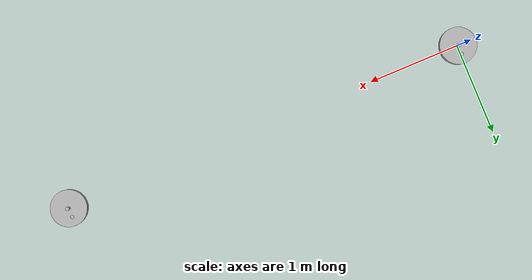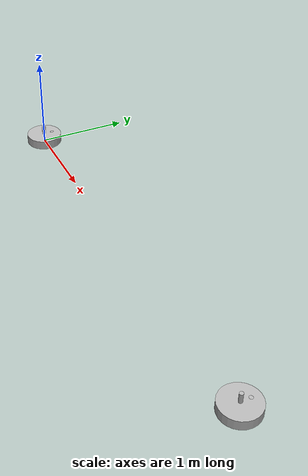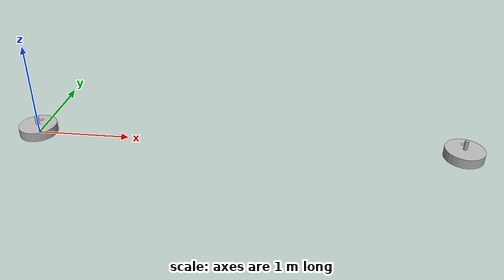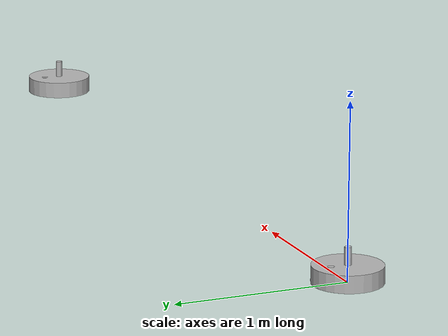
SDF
<sdf version='1.7'>
  <model name='pointRobot'>
    <joint name='mobile_joint_x_1' type='prismatic'>
      <pose relative_to='__model__'>0 0 0.05 0 -0 0</pose>
      <parent>world</parent>
      <child>base_link_x_1</child>
      <axis>
        <xyz>0 0 1</xyz>
        <limit>
          <lower>-5</lower>
          <upper>5</upper>
          <effort>87</effort>
          <velocity>2.175</velocity>
        </limit>
        <dynamics>
          <spring_reference>0</spring_reference>
          <spring_stiffness>0</spring_stiffness>
        </dynamics>
      </axis>
    </joint>
    <link name='base_link_x_1'>
      <pose relative_to='mobile_joint_x_1'>0 0 0 0 -0 0</pose>
      <inertial>
        <pose>0 0 0 0 -0 0</pose>
        <mass>1</mass>
        <inertia>
          <ixx>1</ixx>
          <ixy>0</ixy>
          <ixz>0</ixz>
          <iyy>1</iyy>
          <iyz>0</iyz>
          <izz>1</izz>
        </inertia>
      </inertial>
    </link>
    <joint name='mobile_joint_y_1' type='prismatic'>
      <pose relative_to='base_link_x_1'>0 0 0 0 -0 0</pose>
      <parent>base_link_x_1</parent>
      <child>base_link_y_1</child>
      <axis>
        <xyz>0 1 0</xyz>
        <limit>
          <lower>-5</lower>
          <upper>5</upper>
          <effort>87</effort>
          <velocity>2.175</velocity>
        </limit>
        <dynamics>
          <spring_reference>0</spring_reference>
          <spring_stiffness>0</spring_stiffness>
        </dynamics>
      </axis>
    </joint>
    <link name='base_link_y_1'>
      <pose relative_to='mobile_joint_y_1'>0 0 0 0 -0 0</pose>
      <inertial>
        <pose>0 0 0 0 -0 0</pose>
        <mass>1</mass>
        <inertia>
          <ixx>1</ixx>
          <ixy>0</ixy>
          <ixz>0</ixz>
          <iyy>1</iyy>
          <iyz>0</iyz>
          <izz>1</izz>
        </inertia>
      </inertial>
    </link>
    <joint name='mobile_joint_theta_1' type='revolute'>
      <pose relative_to='base_link_y_1'>0 0 0 0 -0 0</pose>
      <parent>base_link_y_1</parent>
      <child>base_link_1</child>
      <axis>
        <xyz>0 0 1</xyz>
        <limit>
          <lower>-5</lower>
          <upper>5</upper>
          <effort>87</effort>
          <velocity>2.175</velocity>
        </limit>
        <dynamics>
          <spring_reference>0</spring_reference>
          <spring_stiffness>0</spring_stiffness>
        </dynamics>
      </axis>
    </joint>
    <link name='base_link_1'>
      <pose relative_to='mobile_joint_theta_1'>0 0 0 0 -0 0</pose>
      <inertial>
        <pose>0 0.000498 0.050002 0 -0 0</pose>
        <mass>201</mass>
        <inertia>
          <ixx>3.50995</ixx>
          <ixy>0</ixy>
          <ixz>0</ixz>
          <iyy>3.5</iyy>
          <iyz>-4.97512e-05</iyz>
          <izz>3.00995</izz>
        </inertia>
      </inertial>
      <collision name='base_link_1_collision'>
        <pose>0 0 0 0 -0 0</pose>
        <geometry>
          <cylinder>
            <length>0.1</length>
            <radius>0.2</radius>
          </cylinder>
        </geometry>
      </collision>
      <collision name='base_link_1_fixed_joint_lump__feature_link_1_collision_1'>
        <pose>0 0.1 0.0505 0 -0 0</pose>
        <geometry>
          <cylinder>
            <length>0.001</length>
            <radius>0.02</radius>
          </cylinder>
        </geometry>
      </collision>
      <collision name='base_link_1_fixed_joint_lump__lidar_link_1_collision_2'>
        <pose>0 0 0.1 0 -0 0</pose>
        <geometry>
          <cylinder>
            <length>0.1</length>
            <radius>0.02</radius>
          </cylinder>
        </geometry>
      </collision>
      <visual name='base_link_1_visual'>
        <pose>0 0 0 0 -0 0</pose>
        <geometry>
          <cylinder>
            <length>0.1</length>
            <radius>0.2</radius>
          </cylinder>
        </geometry>
      </visual>
      <visual name='base_link_1_fixed_joint_lump__feature_link_1_visual_1'>
        <pose>0 0.1 0.0505 0 -0 0</pose>
        <geometry>
          <cylinder>
            <length>0.001</length>
            <radius>0.02</radius>
          </cylinder>
        </geometry>
      </visual>
      <visual name='base_link_1_fixed_joint_lump__lidar_link_1_visual_2'>
        <pose>0 0 0.1 0 -0 0</pose>
        <geometry>
          <cylinder>
            <length>0.1</length>
            <radius>0.02</radius>
          </cylinder>
        </geometry>
      </visual>
    </link>
    <joint name='mobile_joint_x_2' type='prismatic'>
      <pose relative_to='__model__'>1.5 0 0.05 0 -0 0</pose>
      <parent>world</parent>
      <child>base_link_x_2</child>
      <axis>
        <xyz>1 0 0</xyz>
        <limit>
          <lower>-5</lower>
          <upper>5</upper>
          <effort>87</effort>
          <velocity>2.175</velocity>
        </limit>
        <dynamics>
          <spring_reference>0</spring_reference>
          <spring_stiffness>0</spring_stiffness>
        </dynamics>
      </axis>
    </joint>
    <link name='base_link_x_2'>
      <pose relative_to='mobile_joint_x_2'>0 0 0 0 -0 0</pose>
      <inertial>
        <pose>0 0 0 0 -0 0</pose>
        <mass>1</mass>
        <inertia>
          <ixx>1</ixx>
          <ixy>0</ixy>
          <ixz>0</ixz>
          <iyy>1</iyy>
          <iyz>0</iyz>
          <izz>1</izz>
        </inertia>
      </inertial>
    </link>
    <joint name='mobile_joint_y_2' type='prismatic'>
      <pose relative_to='base_link_x_2'>1.5 0 0 0 -0 0</pose>
      <parent>base_link_x_2</parent>
      <child>base_link_y_2</child>
      <axis>
        <xyz>0 1 0</xyz>
        <limit>
          <lower>-5</lower>
          <upper>5</upper>
          <effort>87</effort>
          <velocity>2.175</velocity>
        </limit>
        <dynamics>
          <spring_reference>0</spring_reference>
          <spring_stiffness>0</spring_stiffness>
        </dynamics>
      </axis>
    </joint>
    <link name='base_link_y_2'>
      <pose relative_to='mobile_joint_y_2'>0 0 0 0 -0 0</pose>
      <inertial>
        <pose>0 0 0 0 -0 0</pose>
        <mass>1</mass>
        <inertia>
          <ixx>1</ixx>
          <ixy>0</ixy>
          <ixz>0</ixz>
          <iyy>1</iyy>
          <iyz>0</iyz>
          <izz>1</izz>
        </inertia>
      </inertial>
    </link>
    <joint name='mobile_joint_theta_2' type='revolute'>
      <pose relative_to='base_link_y_2'>0 0 0 0 -0 0</pose>
      <parent>base_link_y_2</parent>
      <child>base_link_2</child>
      <axis>
        <xyz>0 0 1</xyz>
        <limit>
          <lower>-5</lower>
          <upper>5</upper>
          <effort>87</effort>
          <velocity>2.175</velocity>
        </limit>
        <dynamics>
          <spring_reference>0</spring_reference>
          <spring_stiffness>0</spring_stiffness>
        </dynamics>
      </axis>
    </joint>
    <link name='base_link_2'>
      <pose relative_to='mobile_joint_theta_2'>0 0 0 0 -0 0</pose>
      <inertial>
        <pose>0.753731 0.000498 0.050002 0 -0 0</pose>
        <mass>201</mass>
        <inertia>
          <ixx>3.50995</ixx>
          <ixy>-0.0746269</ixy>
          <ixz>-7.50037</ixz>
          <iyy>116.56</iyy>
          <iyz>-4.97512e-05</iyz>
          <izz>116.07</izz>
        </inertia>
      </inertial>
      <collision name='base_link_2_collision'>
        <pose>1.5 0 0 0 -0 0</pose>
        <geometry>
          <cylinder>
            <length>0.1</length>
            <radius>0.2</radius>
          </cylinder>
        </geometry>
      </collision>
      <collision name='base_link_2_fixed_joint_lump__feature_link_2_collision_1'>
        <pose>1.5 0.1 0.0505 0 -0 0</pose>
        <geometry>
          <cylinder>
            <length>0.001</length>
            <radius>0.02</radius>
          </cylinder>
        </geometry>
      </collision>
      <collision name='base_link_2_fixed_joint_lump__lidar_link_2_collision_2'>
        <pose>1.5 0 0.1 0 -0 0</pose>
        <geometry>
          <cylinder>
            <length>0.1</length>
            <radius>0.02</radius>
          </cylinder>
        </geometry>
      </collision>
      <visual name='base_link_2_visual'>
        <pose>1.5 0 0 0 -0 0</pose>
        <geometry>
          <cylinder>
            <length>0.1</length>
            <radius>0.2</radius>
          </cylinder>
        </geometry>
      </visual>
      <visual name='base_link_2_fixed_joint_lump__feature_link_2_visual_1'>
        <pose>1.5 0.1 0.0505 0 -0 0</pose>
        <geometry>
          <cylinder>
            <length>0.001</length>
            <radius>0.02</radius>
          </cylinder>
        </geometry>
      </visual>
      <visual name='base_link_2_fixed_joint_lump__lidar_link_2_visual_2'>
        <pose>1.5 0 0.1 0 -0 0</pose>
        <geometry>
          <cylinder>
            <length>0.1</length>
            <radius>0.02</radius>
          </cylinder>
        </geometry>
      </visual>
    </link>
  </model>
</sdf>
